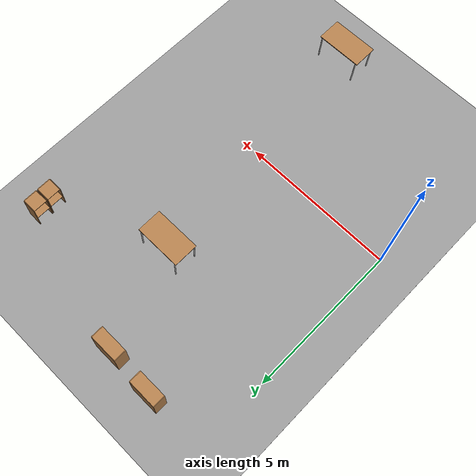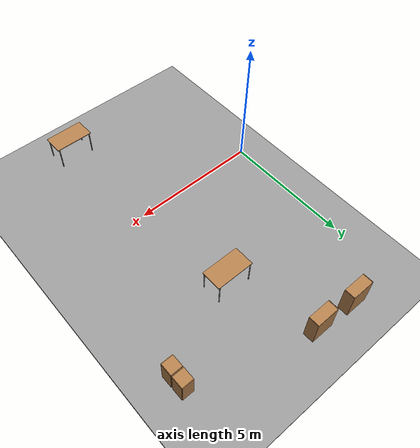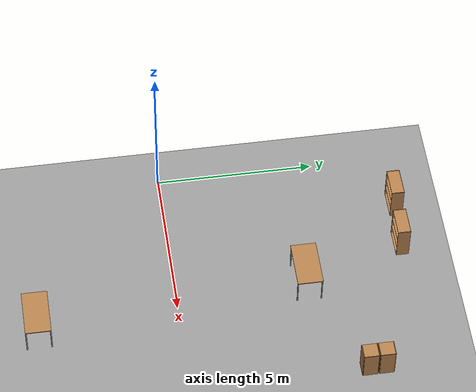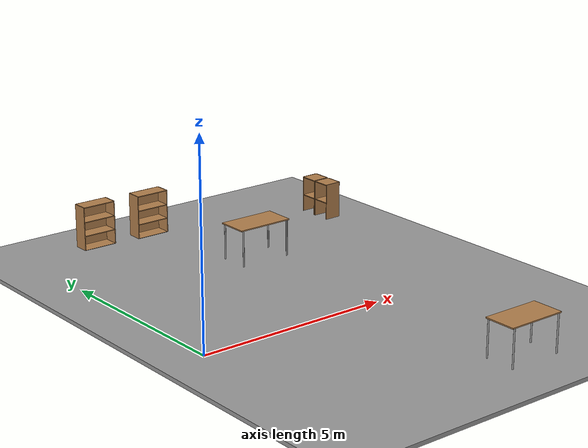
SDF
<sdf version="1.6">
 <world name="default">
  <light name="sun" type="directional">
   <pose>0 0 10 0 -0 0</pose>
   <diffuse>0.8 0.8 0.8 1</diffuse>
   <specular>0.2 0.2 0.2 1</specular>
   <attenuation>
    <range>1000</range>
    <constant>0.9</constant>
    <linear>0.01</linear>
    <quadratic>0.001</quadratic>
   </attenuation>
   <direction>-0.5 0.1 -0.9</direction>
  </light>
  <model name="ground_plane">
   <static>1</static>
   <link name="link">
    <collision name="collision">
     <geometry><plane><normal>0 0 1</normal><size>100 100</size></plane></geometry>
     <surface><friction><ode><mu>100</mu><mu2>50</mu2></ode></friction></surface>
    </collision>
    <visual name="visual">
     <cast_shadows>0</cast_shadows>
     <geometry><plane><normal>0 0 1</normal><size>100 100</size></plane></geometry>
     <material>
      <script><uri>file://media/materials/scripts/gazebo.material</uri><name>Gazebo/Grey</name></script>
     </material>
    </visual>
   </link>
  </model>
  <gravity>0 0 -9.8</gravity>
  <magnetic_field>6e-06 2.3e-05 -4.2e-05</magnetic_field>
  <atmosphere type="adiabatic"/>
  <physics name="default_physics" default="0" type="ode">
   <max_step_size>0.001</max_step_size>
   <real_time_factor>1</real_time_factor>
   <real_time_update_rate>1000</real_time_update_rate>
  </physics>
  <scene><ambient>0.4 0.4 0.4 1</ambient><background>0.7 0.7 0.7 1</background><shadows>1</shadows></scene>
  <spherical_coordinates>
   <surface_model>EARTH_WGS84</surface_model>
   <latitude_deg>0</latitude_deg>
   <longitude_deg>0</longitude_deg>
   <elevation>0</elevation>
   <heading_deg>0</heading_deg>
  </spherical_coordinates>
  <model name="bookshelf">
   <static>1</static>
   <link name="link">
    <inertial><mass>1</mass></inertial>
    <collision name="back">
     <pose>0 0.005 0.6 0 -0 0</pose>
     <geometry><box><size>0.9 0.01 1.2</size></box></geometry>
    </collision>
    <visual name="visual1">
     <pose>0 0.005 0.6 0 -0 0</pose>
     <geometry><box><size>0.9 0.01 1.2</size></box></geometry>
     <material>
      <script><uri>file://media/materials/scripts/gazebo.material</uri><name>Gazebo/Wood</name></script>
     </material>
    </visual>
    <collision name="left_side">
     <pose>0.45 -0.195 0.6 0 -0 0</pose>
     <geometry><box><size>0.02 0.4 1.2</size></box></geometry>
    </collision>
    <visual name="visual2">
     <pose>0.45 -0.195 0.6 0 -0 0</pose>
     <geometry><box><size>0.02 0.4 1.2</size></box></geometry>
     <material>
      <script><uri>file://media/materials/scripts/gazebo.material</uri><name>Gazebo/Wood</name></script>
     </material>
    </visual>
    <collision name="right_side">
     <pose>-0.45 -0.195 0.6 0 -0 0</pose>
     <geometry><box><size>0.02 0.4 1.2</size></box></geometry>
    </collision>
    <visual name="visual3">
     <pose>-0.45 -0.195 0.6 0 -0 0</pose>
     <geometry><box><size>0.02 0.4 1.2</size></box></geometry>
     <material>
      <script><uri>file://media/materials/scripts/gazebo.material</uri><name>Gazebo/Wood</name></script>
     </material>
    </visual>
    <collision name="bottom">
     <pose>0 -0.195 0.03 0 -0 0</pose>
     <geometry><box><size>0.88 0.4 0.06</size></box></geometry>
    </collision>
    <visual name="visual4">
     <pose>0 -0.195 0.03 0 -0 0</pose>
     <geometry><box><size>0.88 0.4 0.06</size></box></geometry>
     <material>
      <script><uri>file://media/materials/scripts/gazebo.material</uri><name>Gazebo/Wood</name></script>
     </material>
    </visual>
    <collision name="top">
     <pose>0 -0.195 1.19 0 -0 0</pose>
     <geometry><box><size>0.88 0.4 0.02</size></box></geometry>
    </collision>
    <visual name="visual5">
     <pose>0 -0.195 1.19 0 -0 0</pose>
     <geometry><box><size>0.88 0.4 0.02</size></box></geometry>
     <material>
      <script><uri>file://media/materials/scripts/gazebo.material</uri><name>Gazebo/Wood</name></script>
     </material>
    </visual>
    <collision name="low_shelf">
     <pose>0 -0.195 0.43 0 -0 0</pose>
     <geometry><box><size>0.88 0.4 0.02</size></box></geometry>
    </collision>
    <visual name="visual6">
     <pose>0 -0.195 0.43 0 -0 0</pose>
     <geometry><box><size>0.88 0.4 0.02</size></box></geometry>
     <material>
      <script><uri>file://media/materials/scripts/gazebo.material</uri><name>Gazebo/Wood</name></script>
     </material>
    </visual>
    <collision name="high_shelf">
     <pose>0 -0.195 0.8 0 -0 0</pose>
     <geometry><box><size>0.88 0.4 0.02</size></box></geometry>
    </collision>
    <visual name="visual7">
     <pose>0 -0.195 0.8 0 -0 0</pose>
     <geometry><box><size>0.88 0.4 0.02</size></box></geometry>
     <material>
      <script><uri>file://media/materials/scripts/gazebo.material</uri><name>Gazebo/Wood</name></script>
     </material>
    </visual>
   </link>
   <pose>1.93114 7.593 0 0 -0 0</pose>
  </model>
  <model name="cabinet">
   <static>1</static>
   <link name="cabinet_bottom_plate">
    <inertial>
     <pose>0 0 -1 0 -0 0</pose>
     <inertia><ixx>2.05</ixx><ixy>0</ixy><ixz>0</ixz><iyy>2.05</iyy><iyz>0</iyz><izz>2.05</izz></inertia>
     <mass>25</mass>
    </inertial>
    <collision name="cabinet_bottom_plate_geom">
     <pose>0 0 0.01 0 -0 0</pose>
     <geometry><box><size>0.45 0.45 0.02</size></box></geometry>
    </collision>
    <visual name="cabinet_bottom_plate_geom_visual">
     <pose>0 0 0.01 0 -0 0</pose>
     <geometry><box><size>0.45 0.45 0.02</size></box></geometry>
     <material>
      <script><uri>file://media/materials/scripts/gazebo.material</uri><name>Gazebo/Wood</name></script>
     </material>
    </visual>
    <collision name="cabinet_bottom_plate_geom_cabinet_back_plate">
     <pose>0.235 0 0.51 0 -0 0</pose>
     <geometry><box><size>0.02 0.45 1.02</size></box></geometry>
    </collision>
    <visual name="cabinet_bottom_plate_geom_cabinet_back_plate_visual">
     <pose>0.235 0 0.51 0 -0 0</pose>
     <geometry><box><size>0.02 0.45 1.02</size></box></geometry>
     <material>
      <script><uri>file://media/materials/scripts/gazebo.material</uri><name>Gazebo/Wood</name></script>
     </material>
    </visual>
    <collision name="cabinet_bottom_plate_geom_cabinet_left_plate">
     <pose>0 0.235 0.51 0 -0 0</pose>
     <geometry><box><size>0.45 0.02 1.02</size></box></geometry>
    </collision>
    <visual name="cabinet_bottom_plate_geom_cabinet_left_plate_visual">
     <pose>0 0.235 0.51 0 -0 0</pose>
     <geometry><box><size>0.45 0.02 1.02</size></box></geometry>
     <material>
      <script><uri>file://media/materials/scripts/gazebo.material</uri><name>Gazebo/Wood</name></script>
     </material>
    </visual>
    <collision name="cabinet_bottom_plate_geom_cabinet_middle_plate">
     <pose>0 0 0.51 0 -0 0</pose>
     <geometry><box><size>0.45 0.45 0.02</size></box></geometry>
    </collision>
    <visual name="cabinet_bottom_plate_geom_cabinet_middle_plate_visual">
     <pose>0 0 0.51 0 -0 0</pose>
     <geometry><box><size>0.45 0.45 0.02</size></box></geometry>
     <material>
      <script><uri>file://media/materials/scripts/gazebo.material</uri><name>Gazebo/Wood</name></script>
     </material>
    </visual>
    <collision name="cabinet_bottom_plate_geom_cabinet_right_plate">
     <pose>0 -0.235 0.51 0 -0 0</pose>
     <geometry><box><size>0.45 0.02 1.02</size></box></geometry>
    </collision>
    <visual name="cabinet_bottom_plate_geom_cabinet_right_plate_visual">
     <pose>0 -0.235 0.51 0 -0 0</pose>
     <geometry><box><size>0.45 0.02 1.02</size></box></geometry>
     <material>
      <script><uri>file://media/materials/scripts/gazebo.material</uri><name>Gazebo/Wood</name></script>
     </material>
    </visual>
    <collision name="cabinet_bottom_plate_geom_cabinet_top_plate">
     <pose>0 0 1.01 0 -0 0</pose>
     <geometry><box><size>0.45 0.45 0.02</size></box></geometry>
    </collision>
    <visual name="cabinet_bottom_plate_geom_cabinet_top_plate_visual">
     <pose>0 0 1.01 0 -0 0</pose>
     <geometry><box><size>0.45 0.45 0.02</size></box></geometry>
     <material>
      <script><uri>file://media/materials/scripts/gazebo.material</uri><name>Gazebo/Wood</name></script>
     </material>
    </visual>
   </link>
   <pose>8.06803 6.00081 0 0 -0 0</pose>
  </model>
  <model name="table">
   <static>1</static>
   <link name="link">
    <collision name="surface">
     <pose>0 0 1 0 -0 0</pose>
     <geometry><box><size>1.5 0.8 0.03</size></box></geometry>
     <surface><friction><ode><mu>0.6</mu><mu2>0.6</mu2></ode></friction></surface>
    </collision>
    <visual name="visual1">
     <pose>0 0 1 0 -0 0</pose>
     <geometry><box><size>1.5 0.8 0.03</size></box></geometry>
     <material>
      <script><uri>file://media/materials/scripts/gazebo.material</uri><name>Gazebo/Wood</name></script>
     </material>
    </visual>
    <collision name="front_left_leg">
     <pose>0.68 0.38 0.5 0 -0 0</pose>
     <geometry><cylinder><radius>0.02</radius><length>1</length></cylinder></geometry>
    </collision>
    <visual name="front_left_leg">
     <pose>0.68 0.38 0.5 0 -0 0</pose>
     <geometry><cylinder><radius>0.02</radius><length>1</length></cylinder></geometry>
     <material>
      <script><uri>file://media/materials/scripts/gazebo.material</uri><name>Gazebo/Grey</name></script>
     </material>
    </visual>
    <collision name="front_right_leg">
     <pose>0.68 -0.38 0.5 0 -0 0</pose>
     <geometry><cylinder><radius>0.02</radius><length>1</length></cylinder></geometry>
    </collision>
    <visual name="front_right_leg">
     <pose>0.68 -0.38 0.5 0 -0 0</pose>
     <geometry><cylinder><radius>0.02</radius><length>1</length></cylinder></geometry>
     <material>
      <script><uri>file://media/materials/scripts/gazebo.material</uri><name>Gazebo/Grey</name></script>
     </material>
    </visual>
    <collision name="back_right_leg">
     <pose>-0.68 -0.38 0.5 0 -0 0</pose>
     <geometry><cylinder><radius>0.02</radius><length>1</length></cylinder></geometry>
    </collision>
    <visual name="back_right_leg">
     <pose>-0.68 -0.38 0.5 0 -0 0</pose>
     <geometry><cylinder><radius>0.02</radius><length>1</length></cylinder></geometry>
     <material>
      <script><uri>file://media/materials/scripts/gazebo.material</uri><name>Gazebo/Grey</name></script>
     </material>
    </visual>
    <collision name="back_left_leg">
     <pose>-0.68 0.38 0.5 0 -0 0</pose>
     <geometry><cylinder><radius>0.02</radius><length>1</length></cylinder></geometry>
    </collision>
    <visual name="back_left_leg">
     <pose>-0.68 0.38 0.5 0 -0 0</pose>
     <geometry><cylinder><radius>0.02</radius><length>1</length></cylinder></geometry>
     <material>
      <script><uri>file://media/materials/scripts/gazebo.material</uri><name>Gazebo/Grey</name></script>
     </material>
    </visual>
   </link>
   <pose>4.58862 4.11294 0 0 -0 0</pose>
  </model>
  <model name="cabinet_0">
   <static>1</static>
   <link name="cabinet_bottom_plate">
    <inertial>
     <pose>0 0 -1 0 -0 0</pose>
     <inertia><ixx>2.05</ixx><ixy>0</ixy><ixz>0</ixz><iyy>2.05</iyy><iyz>0</iyz><izz>2.05</izz></inertia>
     <mass>25</mass>
    </inertial>
    <collision name="cabinet_bottom_plate_geom">
     <pose>0 0 0.01 0 -0 0</pose>
     <geometry><box><size>0.45 0.45 0.02</size></box></geometry>
    </collision>
    <visual name="cabinet_bottom_plate_geom_visual">
     <pose>0 0 0.01 0 -0 0</pose>
     <geometry><box><size>0.45 0.45 0.02</size></box></geometry>
     <material>
      <script><uri>file://media/materials/scripts/gazebo.material</uri><name>Gazebo/Wood</name></script>
     </material>
    </visual>
    <collision name="cabinet_bottom_plate_geom_cabinet_back_plate">
     <pose>0.235 0 0.51 0 -0 0</pose>
     <geometry><box><size>0.02 0.45 1.02</size></box></geometry>
    </collision>
    <visual name="cabinet_bottom_plate_geom_cabinet_back_plate_visual">
     <pose>0.235 0 0.51 0 -0 0</pose>
     <geometry><box><size>0.02 0.45 1.02</size></box></geometry>
     <material>
      <script><uri>file://media/materials/scripts/gazebo.material</uri><name>Gazebo/Wood</name></script>
     </material>
    </visual>
    <collision name="cabinet_bottom_plate_geom_cabinet_left_plate">
     <pose>0 0.235 0.51 0 -0 0</pose>
     <geometry><box><size>0.45 0.02 1.02</size></box></geometry>
    </collision>
    <visual name="cabinet_bottom_plate_geom_cabinet_left_plate_visual">
     <pose>0 0.235 0.51 0 -0 0</pose>
     <geometry><box><size>0.45 0.02 1.02</size></box></geometry>
     <material>
      <script><uri>file://media/materials/scripts/gazebo.material</uri><name>Gazebo/Wood</name></script>
     </material>
    </visual>
    <collision name="cabinet_bottom_plate_geom_cabinet_middle_plate">
     <pose>0 0 0.51 0 -0 0</pose>
     <geometry><box><size>0.45 0.45 0.02</size></box></geometry>
    </collision>
    <visual name="cabinet_bottom_plate_geom_cabinet_middle_plate_visual">
     <pose>0 0 0.51 0 -0 0</pose>
     <geometry><box><size>0.45 0.45 0.02</size></box></geometry>
     <material>
      <script><uri>file://media/materials/scripts/gazebo.material</uri><name>Gazebo/Wood</name></script>
     </material>
    </visual>
    <collision name="cabinet_bottom_plate_geom_cabinet_right_plate">
     <pose>0 -0.235 0.51 0 -0 0</pose>
     <geometry><box><size>0.45 0.02 1.02</size></box></geometry>
    </collision>
    <visual name="cabinet_bottom_plate_geom_cabinet_right_plate_visual">
     <pose>0 -0.235 0.51 0 -0 0</pose>
     <geometry><box><size>0.45 0.02 1.02</size></box></geometry>
     <material>
      <script><uri>file://media/materials/scripts/gazebo.material</uri><name>Gazebo/Wood</name></script>
     </material>
    </visual>
    <collision name="cabinet_bottom_plate_geom_cabinet_top_plate">
     <pose>0 0 1.01 0 -0 0</pose>
     <geometry><box><size>0.45 0.45 0.02</size></box></geometry>
    </collision>
    <visual name="cabinet_bottom_plate_geom_cabinet_top_plate_visual">
     <pose>0 0 1.01 0 -0 0</pose>
     <geometry><box><size>0.45 0.45 0.02</size></box></geometry>
     <material>
      <script><uri>file://media/materials/scripts/gazebo.material</uri><name>Gazebo/Wood</name></script>
     </material>
    </visual>
   </link>
   <pose>8.06955 5.49557 0 0 -0 0</pose>
  </model>
  <model name="bookshelf_0">
   <static>1</static>
   <link name="link">
    <inertial><mass>1</mass></inertial>
    <collision name="back">
     <pose>0 0.005 0.6 0 -0 0</pose>
     <geometry><box><size>0.9 0.01 1.2</size></box></geometry>
    </collision>
    <visual name="visual1">
     <pose>0 0.005 0.6 0 -0 0</pose>
     <geometry><box><size>0.9 0.01 1.2</size></box></geometry>
     <material>
      <script><uri>file://media/materials/scripts/gazebo.material</uri><name>Gazebo/Wood</name></script>
     </material>
    </visual>
    <collision name="left_side">
     <pose>0.45 -0.195 0.6 0 -0 0</pose>
     <geometry><box><size>0.02 0.4 1.2</size></box></geometry>
    </collision>
    <visual name="visual2">
     <pose>0.45 -0.195 0.6 0 -0 0</pose>
     <geometry><box><size>0.02 0.4 1.2</size></box></geometry>
     <material>
      <script><uri>file://media/materials/scripts/gazebo.material</uri><name>Gazebo/Wood</name></script>
     </material>
    </visual>
    <collision name="right_side">
     <pose>-0.45 -0.195 0.6 0 -0 0</pose>
     <geometry><box><size>0.02 0.4 1.2</size></box></geometry>
    </collision>
    <visual name="visual3">
     <pose>-0.45 -0.195 0.6 0 -0 0</pose>
     <geometry><box><size>0.02 0.4 1.2</size></box></geometry>
     <material>
      <script><uri>file://media/materials/scripts/gazebo.material</uri><name>Gazebo/Wood</name></script>
     </material>
    </visual>
    <collision name="bottom">
     <pose>0 -0.195 0.03 0 -0 0</pose>
     <geometry><box><size>0.88 0.4 0.06</size></box></geometry>
    </collision>
    <visual name="visual4">
     <pose>0 -0.195 0.03 0 -0 0</pose>
     <geometry><box><size>0.88 0.4 0.06</size></box></geometry>
     <material>
      <script><uri>file://media/materials/scripts/gazebo.material</uri><name>Gazebo/Wood</name></script>
     </material>
    </visual>
    <collision name="top">
     <pose>0 -0.195 1.19 0 -0 0</pose>
     <geometry><box><size>0.88 0.4 0.02</size></box></geometry>
    </collision>
    <visual name="visual5">
     <pose>0 -0.195 1.19 0 -0 0</pose>
     <geometry><box><size>0.88 0.4 0.02</size></box></geometry>
     <material>
      <script><uri>file://media/materials/scripts/gazebo.material</uri><name>Gazebo/Wood</name></script>
     </material>
    </visual>
    <collision name="low_shelf">
     <pose>0 -0.195 0.43 0 -0 0</pose>
     <geometry><box><size>0.88 0.4 0.02</size></box></geometry>
    </collision>
    <visual name="visual6">
     <pose>0 -0.195 0.43 0 -0 0</pose>
     <geometry><box><size>0.88 0.4 0.02</size></box></geometry>
     <material>
      <script><uri>file://media/materials/scripts/gazebo.material</uri><name>Gazebo/Wood</name></script>
     </material>
    </visual>
    <collision name="high_shelf">
     <pose>0 -0.195 0.8 0 -0 0</pose>
     <geometry><box><size>0.88 0.4 0.02</size></box></geometry>
    </collision>
    <visual name="visual7">
     <pose>0 -0.195 0.8 0 -0 0</pose>
     <geometry><box><size>0.88 0.4 0.02</size></box></geometry>
     <material>
      <script><uri>file://media/materials/scripts/gazebo.material</uri><name>Gazebo/Wood</name></script>
     </material>
    </visual>
   </link>
   <pose>3.49953 7.5028 0 0 -0 0</pose>
  </model>
  <model name="ground_plane_0">
   <static>1</static>
   <link name="link">
    <collision name="collision">
     <geometry><plane><normal>0 0 1</normal><size>100 100</size></plane></geometry>
     <surface><friction><ode><mu>100</mu><mu2>50</mu2></ode></friction></surface>
    </collision>
    <visual name="visual">
     <cast_shadows>0</cast_shadows>
     <geometry><plane><normal>0 0 1</normal><size>100 100</size></plane></geometry>
     <material>
      <script><uri>file://media/materials/scripts/gazebo.material</uri><name>Gazebo/Grey</name></script>
     </material>
    </visual>
   </link>
   <pose>3.64289 -3.224 0 0 -0 0</pose>
  </model>
  <model name="table_0">
   <static>1</static>
   <link name="link">
    <collision name="surface">
     <pose>0 0 1 0 -0 0</pose>
     <geometry><box><size>1.5 0.8 0.03</size></box></geometry>
     <surface><friction><ode><mu>0.6</mu><mu2>0.6</mu2></ode></friction></surface>
    </collision>
    <visual name="visual1">
     <pose>0 0 1 0 -0 0</pose>
     <geometry><box><size>1.5 0.8 0.03</size></box></geometry>
     <material>
      <script><uri>file://media/materials/scripts/gazebo.material</uri><name>Gazebo/Wood</name></script>
     </material>
    </visual>
    <collision name="front_left_leg">
     <pose>0.68 0.38 0.5 0 -0 0</pose>
     <geometry><cylinder><radius>0.02</radius><length>1</length></cylinder></geometry>
    </collision>
    <visual name="front_left_leg">
     <pose>0.68 0.38 0.5 0 -0 0</pose>
     <geometry><cylinder><radius>0.02</radius><length>1</length></cylinder></geometry>
     <material>
      <script><uri>file://media/materials/scripts/gazebo.material</uri><name>Gazebo/Grey</name></script>
     </material>
    </visual>
    <collision name="front_right_leg">
     <pose>0.68 -0.38 0.5 0 -0 0</pose>
     <geometry><cylinder><radius>0.02</radius><length>1</length></cylinder></geometry>
    </collision>
    <visual name="front_right_leg">
     <pose>0.68 -0.38 0.5 0 -0 0</pose>
     <geometry><cylinder><radius>0.02</radius><length>1</length></cylinder></geometry>
     <material>
      <script><uri>file://media/materials/scripts/gazebo.material</uri><name>Gazebo/Grey</name></script>
     </material>
    </visual>
    <collision name="back_right_leg">
     <pose>-0.68 -0.38 0.5 0 -0 0</pose>
     <geometry><cylinder><radius>0.02</radius><length>1</length></cylinder></geometry>
    </collision>
    <visual name="back_right_leg">
     <pose>-0.68 -0.38 0.5 0 -0 0</pose>
     <geometry><cylinder><radius>0.02</radius><length>1</length></cylinder></geometry>
     <material>
      <script><uri>file://media/materials/scripts/gazebo.material</uri><name>Gazebo/Grey</name></script>
     </material>
    </visual>
    <collision name="back_left_leg">
     <pose>-0.68 0.38 0.5 0 -0 0</pose>
     <geometry><cylinder><radius>0.02</radius><length>1</length></cylinder></geometry>
    </collision>
    <visual name="back_left_leg">
     <pose>-0.68 0.38 0.5 0 -0 0</pose>
     <geometry><cylinder><radius>0.02</radius><length>1</length></cylinder></geometry>
     <material>
      <script><uri>file://media/materials/scripts/gazebo.material</uri><name>Gazebo/Grey</name></script>
     </material>
    </visual>
   </link>
   <pose>5.28182 -4.38074 0 0 -0 0</pose>
  </model>
  <plugin filename="libcollision_map_creator.so" name="collision_map_creator"/>
 </world>
</sdf>
